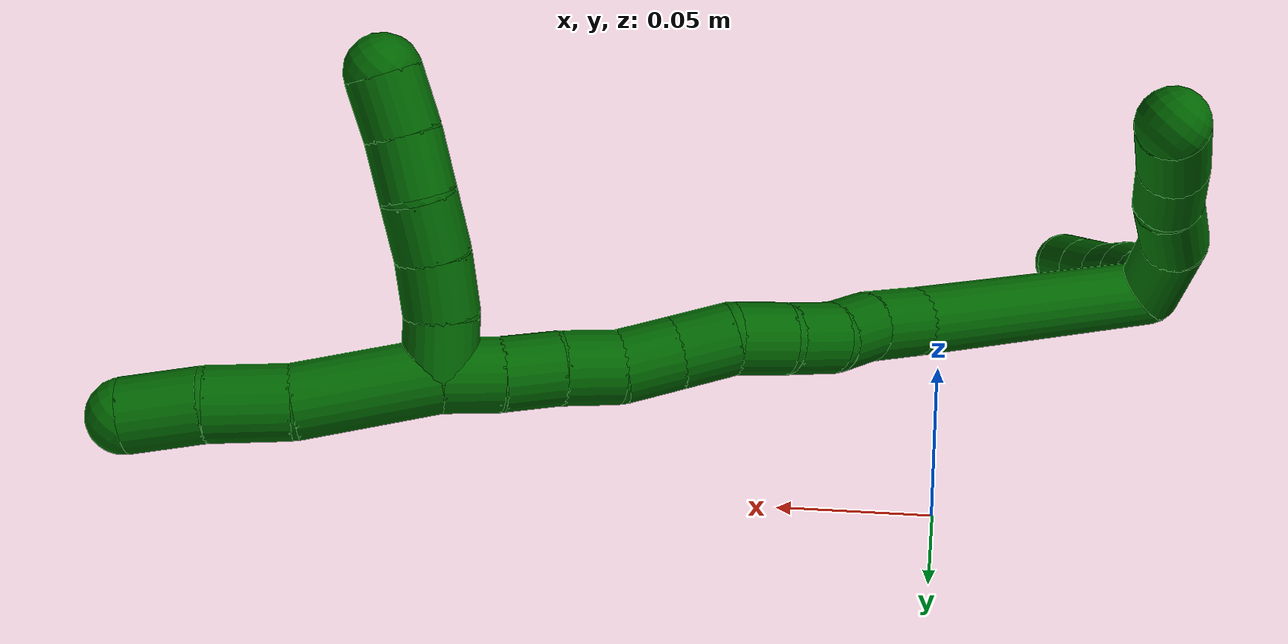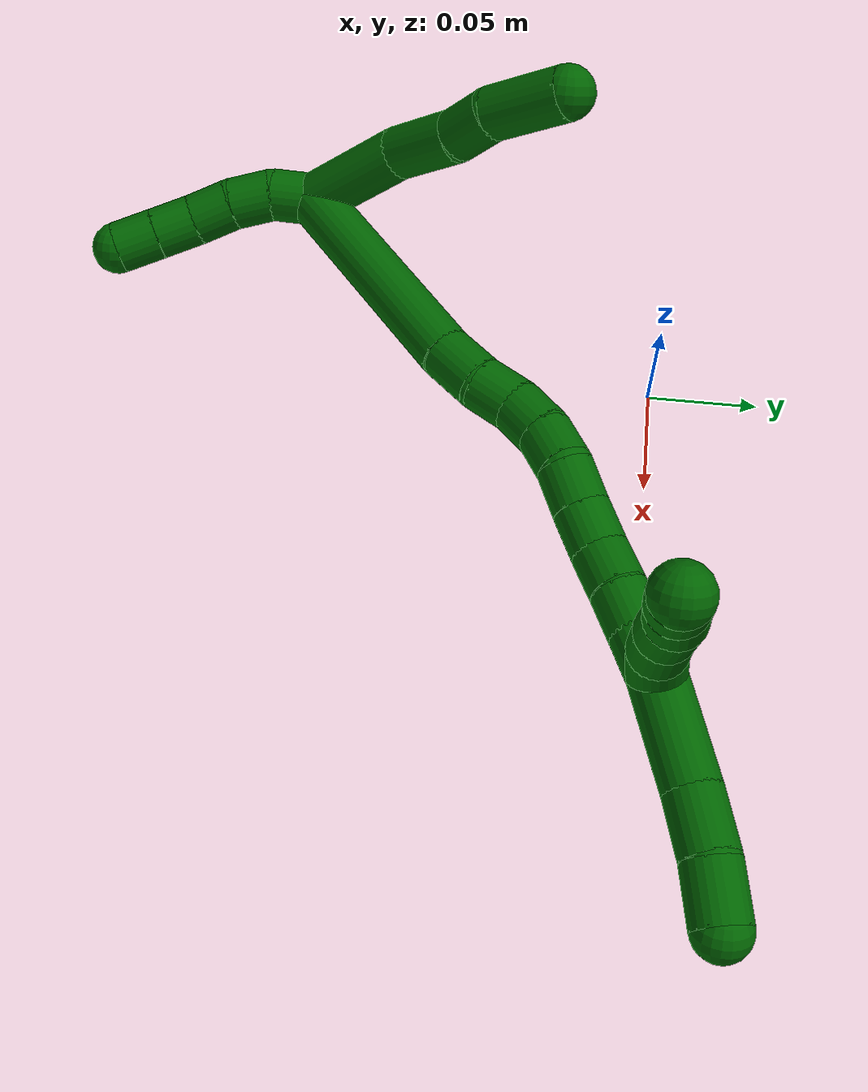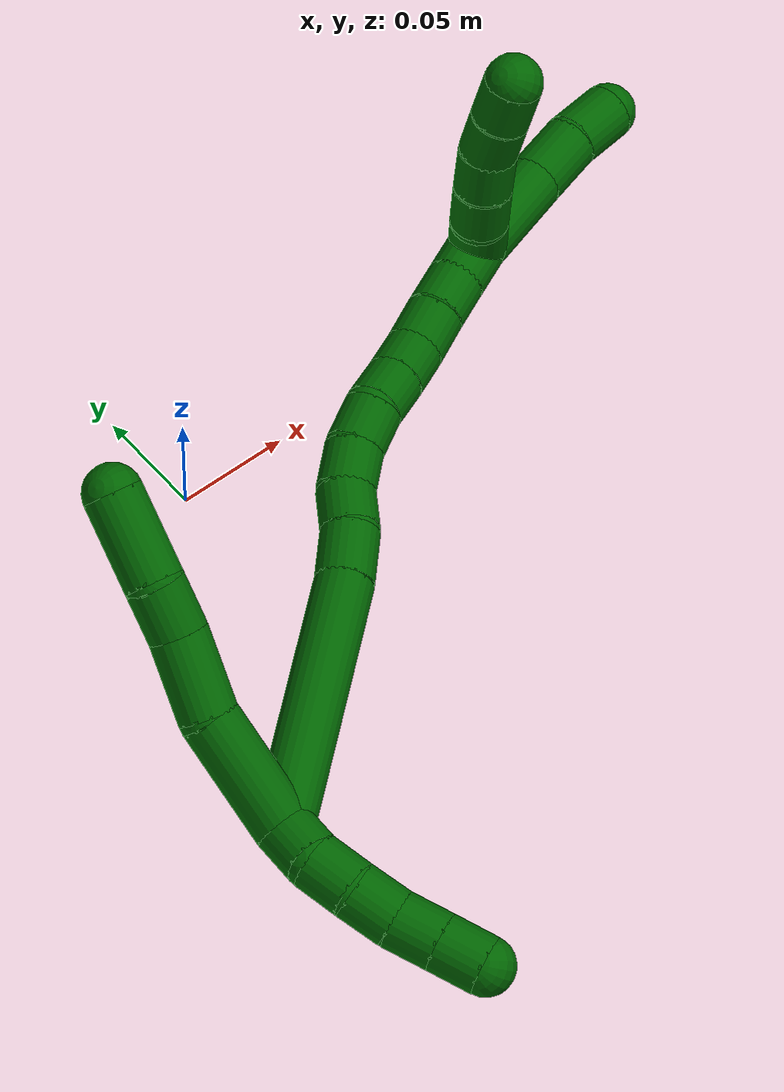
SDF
<sdf version="1.7">
 <world name="default">
  <model name="6">
   <static>0</static>
   <link name="6">
    <collision name="collision-cylinder-e_1_2_8">
     <pose>-0.007 0.021422 0.014103 -0.988556 -0.26646 0.144199</pose>
     <geometry><cylinder><radius>0.0125</radius><length>0.053171</length></cylinder></geometry>
     <surface>
      <friction><ode><mu>1.16</mu><mu2>1.16</mu2><slip1>0</slip1><slip2>0</slip2></ode></friction>
      <contact><ode><kp>1e+06</kp><kd>1</kd><max_vel>0</max_vel><min_depth>0.001</min_depth></ode></contact>
     </surface>
    </collision>
    <visual name="visual-cylinder-e_1_2_8">
     <pose>-0.007 0.021422 0.014103 -0.988556 -0.26646 0.144199</pose>
     <geometry><cylinder><radius>0.0125</radius><length>0.053171</length></cylinder></geometry>
     <material><ambient>0 0.392157 0.003922 1</ambient></material>
    </visual>
    <collision name="collision-cylinder-e_2_8_9">
     <pose>-0.015894 0.059132 0.0345 -1.20211 -0.10797 0.074072</pose>
     <geometry><cylinder><radius>0.0125</radius><length>0.035129</length></cylinder></geometry>
     <surface>
      <friction><ode><mu>1.16</mu><mu2>1.16</mu2><slip1>0</slip1><slip2>0</slip2></ode></friction>
      <contact><ode><kp>1e+06</kp><kd>1</kd><max_vel>0</max_vel><min_depth>0.001</min_depth></ode></contact>
     </surface>
    </collision>
    <visual name="visual-cylinder-e_2_8_9">
     <pose>-0.015894 0.059132 0.0345 -1.20211 -0.10797 0.074072</pose>
     <geometry><cylinder><radius>0.0125</radius><length>0.035129</length></cylinder></geometry>
     <material><ambient>0 0.392157 0.003922 1</ambient></material>
    </visual>
    <collision name="collision-cylinder-e_3_9_10">
     <pose>-0.018704 0.084987 0.047024 -0.993518 -0.080193 0.043489</pose>
     <geometry><cylinder><radius>0.0125</radius><length>0.022907</length></cylinder></geometry>
     <surface>
      <friction><ode><mu>1.16</mu><mu2>1.16</mu2><slip1>0</slip1><slip2>0</slip2></ode></friction>
      <contact><ode><kp>1e+06</kp><kd>1</kd><max_vel>0</max_vel><min_depth>0.001</min_depth></ode></contact>
     </surface>
    </collision>
    <visual name="visual-cylinder-e_3_9_10">
     <pose>-0.018704 0.084987 0.047024 -0.993518 -0.080193 0.043489</pose>
     <geometry><cylinder><radius>0.0125</radius><length>0.022907</length></cylinder></geometry>
     <material><ambient>0 0.392157 0.003922 1</ambient></material>
    </visual>
    <collision name="collision-cylinder-e_4_10_6">
     <pose>-0.023708 0.112291 0.059957 -1.2095 -0.212281 0.147003</pose>
     <geometry><cylinder><radius>0.0125</radius><length>0.038793</length></cylinder></geometry>
     <surface>
      <friction><ode><mu>1.16</mu><mu2>1.16</mu2><slip1>0</slip1><slip2>0</slip2></ode></friction>
      <contact><ode><kp>1e+06</kp><kd>1</kd><max_vel>0</max_vel><min_depth>0.001</min_depth></ode></contact>
     </surface>
    </collision>
    <visual name="visual-cylinder-e_4_10_6">
     <pose>-0.023708 0.112291 0.059957 -1.2095 -0.212281 0.147003</pose>
     <geometry><cylinder><radius>0.0125</radius><length>0.038793</length></cylinder></geometry>
     <material><ambient>0 0.392157 0.003922 1</ambient></material>
    </visual>
    <collision name="collision-cylinder-e_1_2_11">
     <pose>0.006385 -0.00769 0.000292 1.53283 0.692586 0.668688</pose>
     <geometry><cylinder><radius>0.0125</radius><length>0.02</length></cylinder></geometry>
     <surface>
      <friction><ode><mu>1.16</mu><mu2>1.16</mu2><slip1>0</slip1><slip2>0</slip2></ode></friction>
      <contact><ode><kp>1e+06</kp><kd>1</kd><max_vel>0</max_vel><min_depth>0.001</min_depth></ode></contact>
     </surface>
    </collision>
    <visual name="visual-cylinder-e_1_2_11">
     <pose>0.006385 -0.00769 0.000292 1.53283 0.692586 0.668688</pose>
     <geometry><cylinder><radius>0.0125</radius><length>0.02</length></cylinder></geometry>
     <material><ambient>0 0.392157 0.003922 1</ambient></material>
    </visual>
    <collision name="collision-cylinder-e_2_11_12">
     <pose>0.019694 -0.021995 -0.002301 1.98214 0.764711 1.10155</pose>
     <geometry><cylinder><radius>0.0125</radius><length>0.02</length></cylinder></geometry>
     <surface>
      <friction><ode><mu>1.16</mu><mu2>1.16</mu2><slip1>0</slip1><slip2>0</slip2></ode></friction>
      <contact><ode><kp>1e+06</kp><kd>1</kd><max_vel>0</max_vel><min_depth>0.001</min_depth></ode></contact>
     </surface>
    </collision>
    <visual name="visual-cylinder-e_2_11_12">
     <pose>0.019694 -0.021995 -0.002301 1.98214 0.764711 1.10155</pose>
     <geometry><cylinder><radius>0.0125</radius><length>0.02</length></cylinder></geometry>
     <material><ambient>0 0.392157 0.003922 1</ambient></material>
    </visual>
    <collision name="collision-cylinder-e_3_12_13">
     <pose>0.033005 -0.034879 -0.009645 2.18893 0.692886 1.22101</pose>
     <geometry><cylinder><radius>0.0125</radius><length>0.02</length></cylinder></geometry>
     <surface>
      <friction><ode><mu>1.16</mu><mu2>1.16</mu2><slip1>0</slip1><slip2>0</slip2></ode></friction>
      <contact><ode><kp>1e+06</kp><kd>1</kd><max_vel>0</max_vel><min_depth>0.001</min_depth></ode></contact>
     </surface>
    </collision>
    <visual name="visual-cylinder-e_3_12_13">
     <pose>0.033005 -0.034879 -0.009645 2.18893 0.692886 1.22101</pose>
     <geometry><cylinder><radius>0.0125</radius><length>0.02</length></cylinder></geometry>
     <material><ambient>0 0.392157 0.003922 1</ambient></material>
    </visual>
    <collision name="collision-cylinder-e_4_13_14">
     <pose>0.046958 -0.046487 -0.01788 2.18656 0.858092 1.44788</pose>
     <geometry><cylinder><radius>0.0125</radius><length>0.02</length></cylinder></geometry>
     <surface>
      <friction><ode><mu>1.16</mu><mu2>1.16</mu2><slip1>0</slip1><slip2>0</slip2></ode></friction>
      <contact><ode><kp>1e+06</kp><kd>1</kd><max_vel>0</max_vel><min_depth>0.001</min_depth></ode></contact>
     </surface>
    </collision>
    <visual name="visual-cylinder-e_4_13_14">
     <pose>0.046958 -0.046487 -0.01788 2.18656 0.858092 1.44788</pose>
     <geometry><cylinder><radius>0.0125</radius><length>0.02</length></cylinder></geometry>
     <material><ambient>0 0.392157 0.003922 1</ambient></material>
    </visual>
    <collision name="collision-cylinder-e_5_14_5">
     <pose>0.062053 -0.057228 -0.025417 2.17878 0.852393 1.43097</pose>
     <geometry><cylinder><radius>0.0125</radius><length>0.02</length></cylinder></geometry>
     <surface>
      <friction><ode><mu>1.16</mu><mu2>1.16</mu2><slip1>0</slip1><slip2>0</slip2></ode></friction>
      <contact><ode><kp>1e+06</kp><kd>1</kd><max_vel>0</max_vel><min_depth>0.001</min_depth></ode></contact>
     </surface>
    </collision>
    <visual name="visual-cylinder-e_5_14_5">
     <pose>0.062053 -0.057228 -0.025417 2.17878 0.852393 1.43097</pose>
     <geometry><cylinder><radius>0.0125</radius><length>0.02</length></cylinder></geometry>
     <material><ambient>0 0.392157 0.003922 1</ambient></material>
    </visual>
    <collision name="collision-cylinder-e_1_2_15">
     <pose>0.004188 0.052101 -0.025089 -2.01958 0.072296 -0.11498</pose>
     <geometry><cylinder><radius>0.0125</radius><length>0.115957</length></cylinder></geometry>
     <surface>
      <friction><ode><mu>1.16</mu><mu2>1.16</mu2><slip1>0</slip1><slip2>0</slip2></ode></friction>
      <contact><ode><kp>1e+06</kp><kd>1</kd><max_vel>0</max_vel><min_depth>0.001</min_depth></ode></contact>
     </surface>
    </collision>
    <visual name="visual-cylinder-e_1_2_15">
     <pose>0.004188 0.052101 -0.025089 -2.01958 0.072296 -0.11498</pose>
     <geometry><cylinder><radius>0.0125</radius><length>0.115957</length></cylinder></geometry>
     <material><ambient>0 0.392157 0.003922 1</ambient></material>
    </visual>
    <collision name="collision-cylinder-e_2_15_16">
     <pose>0.008424 0.115477 -0.054318 -1.9226 0.003982 -0.005704</pose>
     <geometry><cylinder><radius>0.0125</radius><length>0.024022</length></cylinder></geometry>
     <surface>
      <friction><ode><mu>1.16</mu><mu2>1.16</mu2><slip1>0</slip1><slip2>0</slip2></ode></friction>
      <contact><ode><kp>1e+06</kp><kd>1</kd><max_vel>0</max_vel><min_depth>0.001</min_depth></ode></contact>
     </surface>
    </collision>
    <visual name="visual-cylinder-e_2_15_16">
     <pose>0.008424 0.115477 -0.054318 -1.9226 0.003982 -0.005704</pose>
     <geometry><cylinder><radius>0.0125</radius><length>0.024022</length></cylinder></geometry>
     <material><ambient>0 0.392157 0.003922 1</ambient></material>
    </visual>
    <collision name="collision-cylinder-e_3_16_17">
     <pose>0.006439 0.136039 -0.061572 -1.89444 -0.204597 0.283512</pose>
     <geometry><cylinder><radius>0.0125</radius><length>0.020009</length></cylinder></geometry>
     <surface>
      <friction><ode><mu>1.16</mu><mu2>1.16</mu2><slip1>0</slip1><slip2>0</slip2></ode></friction>
      <contact><ode><kp>1e+06</kp><kd>1</kd><max_vel>0</max_vel><min_depth>0.001</min_depth></ode></contact>
     </surface>
    </collision>
    <visual name="visual-cylinder-e_3_16_17">
     <pose>0.006439 0.136039 -0.061572 -1.89444 -0.204597 0.283512</pose>
     <geometry><cylinder><radius>0.0125</radius><length>0.020009</length></cylinder></geometry>
     <material><ambient>0 0.392157 0.003922 1</ambient></material>
    </visual>
    <collision name="collision-cylinder-e_4_17_18">
     <pose>0.005362 0.154688 -0.068083 -1.91876 0.095707 -0.136416</pose>
     <geometry><cylinder><radius>0.0125</radius><length>0.020008</length></cylinder></geometry>
     <surface>
      <friction><ode><mu>1.16</mu><mu2>1.16</mu2><slip1>0</slip1><slip2>0</slip2></ode></friction>
      <contact><ode><kp>1e+06</kp><kd>1</kd><max_vel>0</max_vel><min_depth>0.001</min_depth></ode></contact>
     </surface>
    </collision>
    <visual name="visual-cylinder-e_4_17_18">
     <pose>0.005362 0.154688 -0.068083 -1.91876 0.095707 -0.136416</pose>
     <geometry><cylinder><radius>0.0125</radius><length>0.020008</length></cylinder></geometry>
     <material><ambient>0 0.392157 0.003922 1</ambient></material>
    </visual>
    <collision name="collision-cylinder-e_5_18_19">
     <pose>0.00893 0.172583 -0.075992 -2.05732 0.264175 -0.4342</pose>
     <geometry><cylinder><radius>0.0125</radius><length>0.02</length></cylinder></geometry>
     <surface>
      <friction><ode><mu>1.16</mu><mu2>1.16</mu2><slip1>0</slip1><slip2>0</slip2></ode></friction>
      <contact><ode><kp>1e+06</kp><kd>1</kd><max_vel>0</max_vel><min_depth>0.001</min_depth></ode></contact>
     </surface>
    </collision>
    <visual name="visual-cylinder-e_5_18_19">
     <pose>0.00893 0.172583 -0.075992 -2.05732 0.264175 -0.4342</pose>
     <geometry><cylinder><radius>0.0125</radius><length>0.02</length></cylinder></geometry>
     <material><ambient>0 0.392157 0.003922 1</ambient></material>
    </visual>
    <collision name="collision-cylinder-e_6_19_20">
     <pose>0.013375 0.188163 -0.08736 -2.34239 0.184434 -0.431146</pose>
     <geometry><cylinder><radius>0.0125</radius><length>0.020002</length></cylinder></geometry>
     <surface>
      <friction><ode><mu>1.16</mu><mu2>1.16</mu2><slip1>0</slip1><slip2>0</slip2></ode></friction>
      <contact><ode><kp>1e+06</kp><kd>1</kd><max_vel>0</max_vel><min_depth>0.001</min_depth></ode></contact>
     </surface>
    </collision>
    <visual name="visual-cylinder-e_6_19_20">
     <pose>0.013375 0.188163 -0.08736 -2.34239 0.184434 -0.431146</pose>
     <geometry><cylinder><radius>0.0125</radius><length>0.020002</length></cylinder></geometry>
     <material><ambient>0 0.392157 0.003922 1</ambient></material>
    </visual>
    <collision name="collision-cylinder-e_7_20_21">
     <pose>0.016855 0.202481 -0.100881 -2.31276 0.165387 -0.372463</pose>
     <geometry><cylinder><radius>0.0125</radius><length>0.020001</length></cylinder></geometry>
     <surface>
      <friction><ode><mu>1.16</mu><mu2>1.16</mu2><slip1>0</slip1><slip2>0</slip2></ode></friction>
      <contact><ode><kp>1e+06</kp><kd>1</kd><max_vel>0</max_vel><min_depth>0.001</min_depth></ode></contact>
     </surface>
    </collision>
    <visual name="visual-cylinder-e_7_20_21">
     <pose>0.016855 0.202481 -0.100881 -2.31276 0.165387 -0.372463</pose>
     <geometry><cylinder><radius>0.0125</radius><length>0.020001</length></cylinder></geometry>
     <material><ambient>0 0.392157 0.003922 1</ambient></material>
    </visual>
    <collision name="collision-cylinder-e_8_21_22">
     <pose>0.02148 0.217885 -0.112546 -2.12199 0.302425 -0.53215</pose>
     <geometry><cylinder><radius>0.0125</radius><length>0.02</length></cylinder></geometry>
     <surface>
      <friction><ode><mu>1.16</mu><mu2>1.16</mu2><slip1>0</slip1><slip2>0</slip2></ode></friction>
      <contact><ode><kp>1e+06</kp><kd>1</kd><max_vel>0</max_vel><min_depth>0.001</min_depth></ode></contact>
     </surface>
    </collision>
    <visual name="visual-cylinder-e_8_21_22">
     <pose>0.02148 0.217885 -0.112546 -2.12199 0.302425 -0.53215</pose>
     <geometry><cylinder><radius>0.0125</radius><length>0.02</length></cylinder></geometry>
     <material><ambient>0 0.392157 0.003922 1</ambient></material>
    </visual>
    <collision name="collision-cylinder-e_9_22_23">
     <pose>0.027003 0.233812 -0.12327 -2.20428 0.257307 -0.500352</pose>
     <geometry><cylinder><radius>0.0125</radius><length>0.02</length></cylinder></geometry>
     <surface>
      <friction><ode><mu>1.16</mu><mu2>1.16</mu2><slip1>0</slip1><slip2>0</slip2></ode></friction>
      <contact><ode><kp>1e+06</kp><kd>1</kd><max_vel>0</max_vel><min_depth>0.001</min_depth></ode></contact>
     </surface>
    </collision>
    <visual name="visual-cylinder-e_9_22_23">
     <pose>0.027003 0.233812 -0.12327 -2.20428 0.257307 -0.500352</pose>
     <geometry><cylinder><radius>0.0125</radius><length>0.02</length></cylinder></geometry>
     <material><ambient>0 0.392157 0.003922 1</ambient></material>
    </visual>
    <collision name="collision-cylinder-e_10_23_1">
     <pose>0.03282 0.249556 -0.134104 -2.14196 0.333352 -0.597725</pose>
     <geometry><cylinder><radius>0.0125</radius><length>0.02</length></cylinder></geometry>
     <surface>
      <friction><ode><mu>1.16</mu><mu2>1.16</mu2><slip1>0</slip1><slip2>0</slip2></ode></friction>
      <contact><ode><kp>1e+06</kp><kd>1</kd><max_vel>0</max_vel><min_depth>0.001</min_depth></ode></contact>
     </surface>
    </collision>
    <visual name="visual-cylinder-e_10_23_1">
     <pose>0.03282 0.249556 -0.134104 -2.14196 0.333352 -0.597725</pose>
     <geometry><cylinder><radius>0.0125</radius><length>0.02</length></cylinder></geometry>
     <material><ambient>0 0.392157 0.003922 1</ambient></material>
    </visual>
    <collision name="collision-cylinder-e_1_1_24">
     <pose>0.042571 0.273526 -0.155261 -2.35706 0.278303 -0.652865</pose>
     <geometry><cylinder><radius>0.0125</radius><length>0.047167</length></cylinder></geometry>
     <surface>
      <friction><ode><mu>1.16</mu><mu2>1.16</mu2><slip1>0</slip1><slip2>0</slip2></ode></friction>
      <contact><ode><kp>1e+06</kp><kd>1</kd><max_vel>0</max_vel><min_depth>0.001</min_depth></ode></contact>
     </surface>
    </collision>
    <visual name="visual-cylinder-e_1_1_24">
     <pose>0.042571 0.273526 -0.155261 -2.35706 0.278303 -0.652865</pose>
     <geometry><cylinder><radius>0.0125</radius><length>0.047167</length></cylinder></geometry>
     <material><ambient>0 0.392157 0.003922 1</ambient></material>
    </visual>
    <collision name="collision-cylinder-e_2_24_25">
     <pose>0.054587 0.299089 -0.179362 -2.27175 0.417381 -0.855378</pose>
     <geometry><cylinder><radius>0.0125</radius><length>0.027316</length></cylinder></geometry>
     <surface>
      <friction><ode><mu>1.16</mu><mu2>1.16</mu2><slip1>0</slip1><slip2>0</slip2></ode></friction>
      <contact><ode><kp>1e+06</kp><kd>1</kd><max_vel>0</max_vel><min_depth>0.001</min_depth></ode></contact>
     </surface>
    </collision>
    <visual name="visual-cylinder-e_2_24_25">
     <pose>0.054587 0.299089 -0.179362 -2.27175 0.417381 -0.855378</pose>
     <geometry><cylinder><radius>0.0125</radius><length>0.027316</length></cylinder></geometry>
     <material><ambient>0 0.392157 0.003922 1</ambient></material>
    </visual>
    <collision name="collision-cylinder-e_3_25_4">
     <pose>0.065107 0.316142 -0.196442 -2.4476 0.401306 -1.02467</pose>
     <geometry><cylinder><radius>0.0125</radius><length>0.025517</length></cylinder></geometry>
     <surface>
      <friction><ode><mu>1.16</mu><mu2>1.16</mu2><slip1>0</slip1><slip2>0</slip2></ode></friction>
      <contact><ode><kp>1e+06</kp><kd>1</kd><max_vel>0</max_vel><min_depth>0.001</min_depth></ode></contact>
     </surface>
    </collision>
    <visual name="visual-cylinder-e_3_25_4">
     <pose>0.065107 0.316142 -0.196442 -2.4476 0.401306 -1.02467</pose>
     <geometry><cylinder><radius>0.0125</radius><length>0.025517</length></cylinder></geometry>
     <material><ambient>0 0.392157 0.003922 1</ambient></material>
    </visual>
    <collision name="collision-cylinder-e_1_1_26">
     <pose>0.041143 0.260512 -0.131121 -0.355751 0.529407 -0.097384</pose>
     <geometry><cylinder><radius>0.0125</radius><length>0.02</length></cylinder></geometry>
     <surface>
      <friction><ode><mu>1.16</mu><mu2>1.16</mu2><slip1>0</slip1><slip2>0</slip2></ode></friction>
      <contact><ode><kp>1e+06</kp><kd>1</kd><max_vel>0</max_vel><min_depth>0.001</min_depth></ode></contact>
     </surface>
    </collision>
    <visual name="visual-cylinder-e_1_1_26">
     <pose>0.041143 0.260512 -0.131121 -0.355751 0.529407 -0.097384</pose>
     <geometry><cylinder><radius>0.0125</radius><length>0.02</length></cylinder></geometry>
     <material><ambient>0 0.392157 0.003922 1</ambient></material>
    </visual>
    <collision name="collision-cylinder-e_2_26_27">
     <pose>0.051357 0.268242 -0.115889 -0.584431 0.542702 -0.166999</pose>
     <geometry><cylinder><radius>0.0125</radius><length>0.02</length></cylinder></geometry>
     <surface>
      <friction><ode><mu>1.16</mu><mu2>1.16</mu2><slip1>0</slip1><slip2>0</slip2></ode></friction>
      <contact><ode><kp>1e+06</kp><kd>1</kd><max_vel>0</max_vel><min_depth>0.001</min_depth></ode></contact>
     </surface>
    </collision>
    <visual name="visual-cylinder-e_2_26_27">
     <pose>0.051357 0.268242 -0.115889 -0.584431 0.542702 -0.166999</pose>
     <geometry><cylinder><radius>0.0125</radius><length>0.02</length></cylinder></geometry>
     <material><ambient>0 0.392157 0.003922 1</ambient></material>
    </visual>
    <collision name="collision-cylinder-e_3_27_28">
     <pose>0.061753 0.278435 -0.10221 -0.696563 0.550477 -0.204359</pose>
     <geometry><cylinder><radius>0.0125</radius><length>0.02</length></cylinder></geometry>
     <surface>
      <friction><ode><mu>1.16</mu><mu2>1.16</mu2><slip1>0</slip1><slip2>0</slip2></ode></friction>
      <contact><ode><kp>1e+06</kp><kd>1</kd><max_vel>0</max_vel><min_depth>0.001</min_depth></ode></contact>
     </surface>
    </collision>
    <visual name="visual-cylinder-e_3_27_28">
     <pose>0.061753 0.278435 -0.10221 -0.696563 0.550477 -0.204359</pose>
     <geometry><cylinder><radius>0.0125</radius><length>0.02</length></cylinder></geometry>
     <material><ambient>0 0.392157 0.003922 1</ambient></material>
    </visual>
    <collision name="collision-cylinder-e_4_28_29">
     <pose>0.073527 0.288344 -0.089552 -0.627688 0.713358 -0.240712</pose>
     <geometry><cylinder><radius>0.0125</radius><length>0.02</length></cylinder></geometry>
     <surface>
      <friction><ode><mu>1.16</mu><mu2>1.16</mu2><slip1>0</slip1><slip2>0</slip2></ode></friction>
      <contact><ode><kp>1e+06</kp><kd>1</kd><max_vel>0</max_vel><min_depth>0.001</min_depth></ode></contact>
     </surface>
    </collision>
    <visual name="visual-cylinder-e_4_28_29">
     <pose>0.073527 0.288344 -0.089552 -0.627688 0.713358 -0.240712</pose>
     <geometry><cylinder><radius>0.0125</radius><length>0.02</length></cylinder></geometry>
     <material><ambient>0 0.392157 0.003922 1</ambient></material>
    </visual>
    <collision name="collision-cylinder-e_5_29_3">
     <pose>0.086688 0.297758 -0.07782 -0.725153 0.723044 -0.28495</pose>
     <geometry><cylinder><radius>0.0125</radius><length>0.02</length></cylinder></geometry>
     <surface>
      <friction><ode><mu>1.16</mu><mu2>1.16</mu2><slip1>0</slip1><slip2>0</slip2></ode></friction>
      <contact><ode><kp>1e+06</kp><kd>1</kd><max_vel>0</max_vel><min_depth>0.001</min_depth></ode></contact>
     </surface>
    </collision>
    <visual name="visual-cylinder-e_5_29_3">
     <pose>0.086688 0.297758 -0.07782 -0.725153 0.723044 -0.28495</pose>
     <geometry><cylinder><radius>0.0125</radius><length>0.02</length></cylinder></geometry>
     <material><ambient>0 0.392157 0.003922 1</ambient></material>
    </visual>
    <collision name="collision-sphere-3">
     <pose>0.093305 0.302731 -0.072209 0 -0 0</pose>
     <geometry><sphere><radius>0.0125</radius></sphere></geometry>
     <surface>
      <friction><ode><mu>1.16</mu><mu2>1.16</mu2><slip1>0</slip1><slip2>0</slip2></ode></friction>
      <contact><ode><kp>1e+06</kp><kd>1</kd><max_vel>0</max_vel><min_depth>0.001</min_depth></ode></contact>
     </surface>
    </collision>
    <visual name="visual-sphere-3">
     <pose>0.093305 0.302731 -0.072209 0 -0 0</pose>
     <geometry><sphere><radius>0.0125</radius></sphere></geometry>
     <material><ambient>0 0.392157 0.003922 1</ambient></material>
    </visual>
    <collision name="collision-sphere-29">
     <pose>0.080071 0.292785 -0.083432 0 -0 0</pose>
     <geometry><sphere><radius>0.0125</radius></sphere></geometry>
     <surface>
      <friction><ode><mu>1.16</mu><mu2>1.16</mu2><slip1>0</slip1><slip2>0</slip2></ode></friction>
      <contact><ode><kp>1e+06</kp><kd>1</kd><max_vel>0</max_vel><min_depth>0.001</min_depth></ode></contact>
     </surface>
    </collision>
    <visual name="visual-sphere-29">
     <pose>0.080071 0.292785 -0.083432 0 -0 0</pose>
     <geometry><sphere><radius>0.0125</radius></sphere></geometry>
     <material><ambient>0 0.392157 0.003922 1</ambient></material>
    </visual>
    <collision name="collision-sphere-28">
     <pose>0.066984 0.283903 -0.095672 0 -0 0</pose>
     <geometry><sphere><radius>0.0125</radius></sphere></geometry>
     <surface>
      <friction><ode><mu>1.16</mu><mu2>1.16</mu2><slip1>0</slip1><slip2>0</slip2></ode></friction>
      <contact><ode><kp>1e+06</kp><kd>1</kd><max_vel>0</max_vel><min_depth>0.001</min_depth></ode></contact>
     </surface>
    </collision>
    <visual name="visual-sphere-28">
     <pose>0.066984 0.283903 -0.095672 0 -0 0</pose>
     <geometry><sphere><radius>0.0125</radius></sphere></geometry>
     <material><ambient>0 0.392157 0.003922 1</ambient></material>
    </visual>
    <collision name="collision-sphere-27">
     <pose>0.056522 0.272967 -0.108747 0 -0 0</pose>
     <geometry><sphere><radius>0.0125</radius></sphere></geometry>
     <surface>
      <friction><ode><mu>1.16</mu><mu2>1.16</mu2><slip1>0</slip1><slip2>0</slip2></ode></friction>
      <contact><ode><kp>1e+06</kp><kd>1</kd><max_vel>0</max_vel><min_depth>0.001</min_depth></ode></contact>
     </surface>
    </collision>
    <visual name="visual-sphere-27">
     <pose>0.056522 0.272967 -0.108747 0 -0 0</pose>
     <geometry><sphere><radius>0.0125</radius></sphere></geometry>
     <material><ambient>0 0.392157 0.003922 1</ambient></material>
    </visual>
    <collision name="collision-sphere-26">
     <pose>0.046193 0.263518 -0.123031 0 -0 0</pose>
     <geometry><sphere><radius>0.0125</radius></sphere></geometry>
     <surface>
      <friction><ode><mu>1.16</mu><mu2>1.16</mu2><slip1>0</slip1><slip2>0</slip2></ode></friction>
      <contact><ode><kp>1e+06</kp><kd>1</kd><max_vel>0</max_vel><min_depth>0.001</min_depth></ode></contact>
     </surface>
    </collision>
    <visual name="visual-sphere-26">
     <pose>0.046193 0.263518 -0.123031 0 -0 0</pose>
     <geometry><sphere><radius>0.0125</radius></sphere></geometry>
     <material><ambient>0 0.392157 0.003922 1</ambient></material>
    </visual>
    <collision name="collision-sphere-4">
     <pose>0.070091 0.323654 -0.20547 0 -0 0</pose>
     <geometry><sphere><radius>0.0125</radius></sphere></geometry>
     <surface>
      <friction><ode><mu>1.16</mu><mu2>1.16</mu2><slip1>0</slip1><slip2>0</slip2></ode></friction>
      <contact><ode><kp>1e+06</kp><kd>1</kd><max_vel>0</max_vel><min_depth>0.001</min_depth></ode></contact>
     </surface>
    </collision>
    <visual name="visual-sphere-4">
     <pose>0.070091 0.323654 -0.20547 0 -0 0</pose>
     <geometry><sphere><radius>0.0125</radius></sphere></geometry>
     <material><ambient>0 0.392157 0.003922 1</ambient></material>
    </visual>
    <collision name="collision-sphere-25">
     <pose>0.060123 0.30863 -0.187414 0 -0 0</pose>
     <geometry><sphere><radius>0.0125</radius></sphere></geometry>
     <surface>
      <friction><ode><mu>1.16</mu><mu2>1.16</mu2><slip1>0</slip1><slip2>0</slip2></ode></friction>
      <contact><ode><kp>1e+06</kp><kd>1</kd><max_vel>0</max_vel><min_depth>0.001</min_depth></ode></contact>
     </surface>
    </collision>
    <visual name="visual-sphere-25">
     <pose>0.060123 0.30863 -0.187414 0 -0 0</pose>
     <geometry><sphere><radius>0.0125</radius></sphere></geometry>
     <material><ambient>0 0.392157 0.003922 1</ambient></material>
    </visual>
    <collision name="collision-sphere-24">
     <pose>0.04905 0.289547 -0.171309 0 -0 0</pose>
     <geometry><sphere><radius>0.0125</radius></sphere></geometry>
     <surface>
      <friction><ode><mu>1.16</mu><mu2>1.16</mu2><slip1>0</slip1><slip2>0</slip2></ode></friction>
      <contact><ode><kp>1e+06</kp><kd>1</kd><max_vel>0</max_vel><min_depth>0.001</min_depth></ode></contact>
     </surface>
    </collision>
    <visual name="visual-sphere-24">
     <pose>0.04905 0.289547 -0.171309 0 -0 0</pose>
     <geometry><sphere><radius>0.0125</radius></sphere></geometry>
     <material><ambient>0 0.392157 0.003922 1</ambient></material>
    </visual>
    <collision name="collision-sphere-1">
     <pose>0.036092 0.257506 -0.139212 0 -0 0</pose>
     <geometry><sphere><radius>0.0125</radius></sphere></geometry>
     <surface>
      <friction><ode><mu>1.16</mu><mu2>1.16</mu2><slip1>0</slip1><slip2>0</slip2></ode></friction>
      <contact><ode><kp>1e+06</kp><kd>1</kd><max_vel>0</max_vel><min_depth>0.001</min_depth></ode></contact>
     </surface>
    </collision>
    <visual name="visual-sphere-1">
     <pose>0.036092 0.257506 -0.139212 0 -0 0</pose>
     <geometry><sphere><radius>0.0125</radius></sphere></geometry>
     <material><ambient>0 0.392157 0.003922 1</ambient></material>
    </visual>
    <collision name="collision-sphere-23">
     <pose>0.029548 0.241606 -0.128995 0 -0 0</pose>
     <geometry><sphere><radius>0.0125</radius></sphere></geometry>
     <surface>
      <friction><ode><mu>1.16</mu><mu2>1.16</mu2><slip1>0</slip1><slip2>0</slip2></ode></friction>
      <contact><ode><kp>1e+06</kp><kd>1</kd><max_vel>0</max_vel><min_depth>0.001</min_depth></ode></contact>
     </surface>
    </collision>
    <visual name="visual-sphere-23">
     <pose>0.029548 0.241606 -0.128995 0 -0 0</pose>
     <geometry><sphere><radius>0.0125</radius></sphere></geometry>
     <material><ambient>0 0.392157 0.003922 1</ambient></material>
    </visual>
    <collision name="collision-sphere-22">
     <pose>0.024458 0.226017 -0.117545 0 -0 0</pose>
     <geometry><sphere><radius>0.0125</radius></sphere></geometry>
     <surface>
      <friction><ode><mu>1.16</mu><mu2>1.16</mu2><slip1>0</slip1><slip2>0</slip2></ode></friction>
      <contact><ode><kp>1e+06</kp><kd>1</kd><max_vel>0</max_vel><min_depth>0.001</min_depth></ode></contact>
     </surface>
    </collision>
    <visual name="visual-sphere-22">
     <pose>0.024458 0.226017 -0.117545 0 -0 0</pose>
     <geometry><sphere><radius>0.0125</radius></sphere></geometry>
     <material><ambient>0 0.392157 0.003922 1</ambient></material>
    </visual>
    <collision name="collision-sphere-21">
     <pose>0.018502 0.209753 -0.107547 0 -0 0</pose>
     <geometry><sphere><radius>0.0125</radius></sphere></geometry>
     <surface>
      <friction><ode><mu>1.16</mu><mu2>1.16</mu2><slip1>0</slip1><slip2>0</slip2></ode></friction>
      <contact><ode><kp>1e+06</kp><kd>1</kd><max_vel>0</max_vel><min_depth>0.001</min_depth></ode></contact>
     </surface>
    </collision>
    <visual name="visual-sphere-21">
     <pose>0.018502 0.209753 -0.107547 0 -0 0</pose>
     <geometry><sphere><radius>0.0125</radius></sphere></geometry>
     <material><ambient>0 0.392157 0.003922 1</ambient></material>
    </visual>
    <collision name="collision-sphere-11">
     <pose>0.012771 -0.015381 0.000584 0 -0 0</pose>
     <geometry><sphere><radius>0.0125</radius></sphere></geometry>
     <surface>
      <friction><ode><mu>1.16</mu><mu2>1.16</mu2><slip1>0</slip1><slip2>0</slip2></ode></friction>
      <contact><ode><kp>1e+06</kp><kd>1</kd><max_vel>0</max_vel><min_depth>0.001</min_depth></ode></contact>
     </surface>
    </collision>
    <visual name="visual-sphere-11">
     <pose>0.012771 -0.015381 0.000584 0 -0 0</pose>
     <geometry><sphere><radius>0.0125</radius></sphere></geometry>
     <material><ambient>0 0.392157 0.003922 1</ambient></material>
    </visual>
    <collision name="collision-sphere-6">
     <pose>-0.027795 0.130028 0.066659 0 -0 0</pose>
     <geometry><sphere><radius>0.0125</radius></sphere></geometry>
     <surface>
      <friction><ode><mu>1.16</mu><mu2>1.16</mu2><slip1>0</slip1><slip2>0</slip2></ode></friction>
      <contact><ode><kp>1e+06</kp><kd>1</kd><max_vel>0</max_vel><min_depth>0.001</min_depth></ode></contact>
     </surface>
    </collision>
    <visual name="visual-sphere-6">
     <pose>-0.027795 0.130028 0.066659 0 -0 0</pose>
     <geometry><sphere><radius>0.0125</radius></sphere></geometry>
     <material><ambient>0 0.392157 0.003922 1</ambient></material>
    </visual>
    <collision name="collision-sphere-10">
     <pose>-0.019621 0.094554 0.053254 0 -0 0</pose>
     <geometry><sphere><radius>0.0125</radius></sphere></geometry>
     <surface>
      <friction><ode><mu>1.16</mu><mu2>1.16</mu2><slip1>0</slip1><slip2>0</slip2></ode></friction>
      <contact><ode><kp>1e+06</kp><kd>1</kd><max_vel>0</max_vel><min_depth>0.001</min_depth></ode></contact>
     </surface>
    </collision>
    <visual name="visual-sphere-10">
     <pose>-0.019621 0.094554 0.053254 0 -0 0</pose>
     <geometry><sphere><radius>0.0125</radius></sphere></geometry>
     <material><ambient>0 0.392157 0.003922 1</ambient></material>
    </visual>
    <collision name="collision-sphere-9">
     <pose>-0.017786 0.075421 0.040793 0 -0 0</pose>
     <geometry><sphere><radius>0.0125</radius></sphere></geometry>
     <surface>
      <friction><ode><mu>1.16</mu><mu2>1.16</mu2><slip1>0</slip1><slip2>0</slip2></ode></friction>
      <contact><ode><kp>1e+06</kp><kd>1</kd><max_vel>0</max_vel><min_depth>0.001</min_depth></ode></contact>
     </surface>
    </collision>
    <visual name="visual-sphere-9">
     <pose>-0.017786 0.075421 0.040793 0 -0 0</pose>
     <geometry><sphere><radius>0.0125</radius></sphere></geometry>
     <material><ambient>0 0.392157 0.003922 1</ambient></material>
    </visual>
    <collision name="collision-sphere-2">
     <geometry><sphere><radius>0.0125</radius></sphere></geometry>
     <surface>
      <friction><ode><mu>1.16</mu><mu2>1.16</mu2><slip1>0</slip1><slip2>0</slip2></ode></friction>
      <contact><ode><kp>1e+06</kp><kd>1</kd><max_vel>0</max_vel><min_depth>0.001</min_depth></ode></contact>
     </surface>
    </collision>
    <visual name="visual-sphere-2">
     <geometry><sphere><radius>0.0125</radius></sphere></geometry>
     <material><ambient>0 0.392157 0.003922 1</ambient></material>
    </visual>
    <collision name="collision-sphere-19">
     <pose>0.011541 0.181116 -0.080505 0 -0 0</pose>
     <geometry><sphere><radius>0.0125</radius></sphere></geometry>
     <surface>
      <friction><ode><mu>1.16</mu><mu2>1.16</mu2><slip1>0</slip1><slip2>0</slip2></ode></friction>
      <contact><ode><kp>1e+06</kp><kd>1</kd><max_vel>0</max_vel><min_depth>0.001</min_depth></ode></contact>
     </surface>
    </collision>
    <visual name="visual-sphere-19">
     <pose>0.011541 0.181116 -0.080505 0 -0 0</pose>
     <geometry><sphere><radius>0.0125</radius></sphere></geometry>
     <material><ambient>0 0.392157 0.003922 1</ambient></material>
    </visual>
    <collision name="collision-sphere-8">
     <pose>-0.014001 0.042843 0.028207 0 -0 0</pose>
     <geometry><sphere><radius>0.0125</radius></sphere></geometry>
     <surface>
      <friction><ode><mu>1.16</mu><mu2>1.16</mu2><slip1>0</slip1><slip2>0</slip2></ode></friction>
      <contact><ode><kp>1e+06</kp><kd>1</kd><max_vel>0</max_vel><min_depth>0.001</min_depth></ode></contact>
     </surface>
    </collision>
    <visual name="visual-sphere-8">
     <pose>-0.014001 0.042843 0.028207 0 -0 0</pose>
     <geometry><sphere><radius>0.0125</radius></sphere></geometry>
     <material><ambient>0 0.392157 0.003922 1</ambient></material>
    </visual>
    <collision name="collision-sphere-12">
     <pose>0.026617 -0.028609 -0.005186 0 -0 0</pose>
     <geometry><sphere><radius>0.0125</radius></sphere></geometry>
     <surface>
      <friction><ode><mu>1.16</mu><mu2>1.16</mu2><slip1>0</slip1><slip2>0</slip2></ode></friction>
      <contact><ode><kp>1e+06</kp><kd>1</kd><max_vel>0</max_vel><min_depth>0.001</min_depth></ode></contact>
     </surface>
    </collision>
    <visual name="visual-sphere-12">
     <pose>0.026617 -0.028609 -0.005186 0 -0 0</pose>
     <geometry><sphere><radius>0.0125</radius></sphere></geometry>
     <material><ambient>0 0.392157 0.003922 1</ambient></material>
    </visual>
    <collision name="collision-sphere-13">
     <pose>0.039392 -0.041149 -0.014104 0 -0 0</pose>
     <geometry><sphere><radius>0.0125</radius></sphere></geometry>
     <surface>
      <friction><ode><mu>1.16</mu><mu2>1.16</mu2><slip1>0</slip1><slip2>0</slip2></ode></friction>
      <contact><ode><kp>1e+06</kp><kd>1</kd><max_vel>0</max_vel><min_depth>0.001</min_depth></ode></contact>
     </surface>
    </collision>
    <visual name="visual-sphere-13">
     <pose>0.039392 -0.041149 -0.014104 0 -0 0</pose>
     <geometry><sphere><radius>0.0125</radius></sphere></geometry>
     <material><ambient>0 0.392157 0.003922 1</ambient></material>
    </visual>
    <collision name="collision-sphere-14">
     <pose>0.054524 -0.051825 -0.021657 0 -0 0</pose>
     <geometry><sphere><radius>0.0125</radius></sphere></geometry>
     <surface>
      <friction><ode><mu>1.16</mu><mu2>1.16</mu2><slip1>0</slip1><slip2>0</slip2></ode></friction>
      <contact><ode><kp>1e+06</kp><kd>1</kd><max_vel>0</max_vel><min_depth>0.001</min_depth></ode></contact>
     </surface>
    </collision>
    <visual name="visual-sphere-14">
     <pose>0.054524 -0.051825 -0.021657 0 -0 0</pose>
     <geometry><sphere><radius>0.0125</radius></sphere></geometry>
     <material><ambient>0 0.392157 0.003922 1</ambient></material>
    </visual>
    <collision name="collision-sphere-5">
     <pose>0.069581 -0.06263 -0.029176 0 -0 0</pose>
     <geometry><sphere><radius>0.0125</radius></sphere></geometry>
     <surface>
      <friction><ode><mu>1.16</mu><mu2>1.16</mu2><slip1>0</slip1><slip2>0</slip2></ode></friction>
      <contact><ode><kp>1e+06</kp><kd>1</kd><max_vel>0</max_vel><min_depth>0.001</min_depth></ode></contact>
     </surface>
    </collision>
    <visual name="visual-sphere-5">
     <pose>0.069581 -0.06263 -0.029176 0 -0 0</pose>
     <geometry><sphere><radius>0.0125</radius></sphere></geometry>
     <material><ambient>0 0.392157 0.003922 1</ambient></material>
    </visual>
    <collision name="collision-sphere-15">
     <pose>0.008376 0.104202 -0.050179 0 -0 0</pose>
     <geometry><sphere><radius>0.0125</radius></sphere></geometry>
     <surface>
      <friction><ode><mu>1.16</mu><mu2>1.16</mu2><slip1>0</slip1><slip2>0</slip2></ode></friction>
      <contact><ode><kp>1e+06</kp><kd>1</kd><max_vel>0</max_vel><min_depth>0.001</min_depth></ode></contact>
     </surface>
    </collision>
    <visual name="visual-sphere-15">
     <pose>0.008376 0.104202 -0.050179 0 -0 0</pose>
     <geometry><sphere><radius>0.0125</radius></sphere></geometry>
     <material><ambient>0 0.392157 0.003922 1</ambient></material>
    </visual>
    <collision name="collision-sphere-16">
     <pose>0.008472 0.126752 -0.058457 0 -0 0</pose>
     <geometry><sphere><radius>0.0125</radius></sphere></geometry>
     <surface>
      <friction><ode><mu>1.16</mu><mu2>1.16</mu2><slip1>0</slip1><slip2>0</slip2></ode></friction>
      <contact><ode><kp>1e+06</kp><kd>1</kd><max_vel>0</max_vel><min_depth>0.001</min_depth></ode></contact>
     </surface>
    </collision>
    <visual name="visual-sphere-16">
     <pose>0.008472 0.126752 -0.058457 0 -0 0</pose>
     <geometry><sphere><radius>0.0125</radius></sphere></geometry>
     <material><ambient>0 0.392157 0.003922 1</ambient></material>
    </visual>
    <collision name="collision-sphere-17">
     <pose>0.004406 0.145326 -0.064687 0 -0 0</pose>
     <geometry><sphere><radius>0.0125</radius></sphere></geometry>
     <surface>
      <friction><ode><mu>1.16</mu><mu2>1.16</mu2><slip1>0</slip1><slip2>0</slip2></ode></friction>
      <contact><ode><kp>1e+06</kp><kd>1</kd><max_vel>0</max_vel><min_depth>0.001</min_depth></ode></contact>
     </surface>
    </collision>
    <visual name="visual-sphere-17">
     <pose>0.004406 0.145326 -0.064687 0 -0 0</pose>
     <geometry><sphere><radius>0.0125</radius></sphere></geometry>
     <material><ambient>0 0.392157 0.003922 1</ambient></material>
    </visual>
    <collision name="collision-sphere-18">
     <pose>0.006318 0.16405 -0.071479 0 -0 0</pose>
     <geometry><sphere><radius>0.0125</radius></sphere></geometry>
     <surface>
      <friction><ode><mu>1.16</mu><mu2>1.16</mu2><slip1>0</slip1><slip2>0</slip2></ode></friction>
      <contact><ode><kp>1e+06</kp><kd>1</kd><max_vel>0</max_vel><min_depth>0.001</min_depth></ode></contact>
     </surface>
    </collision>
    <visual name="visual-sphere-18">
     <pose>0.006318 0.16405 -0.071479 0 -0 0</pose>
     <geometry><sphere><radius>0.0125</radius></sphere></geometry>
     <material><ambient>0 0.392157 0.003922 1</ambient></material>
    </visual>
    <collision name="collision-sphere-20">
     <pose>0.015209 0.19521 -0.094216 0 -0 0</pose>
     <geometry><sphere><radius>0.0125</radius></sphere></geometry>
     <surface>
      <friction><ode><mu>1.16</mu><mu2>1.16</mu2><slip1>0</slip1><slip2>0</slip2></ode></friction>
      <contact><ode><kp>1e+06</kp><kd>1</kd><max_vel>0</max_vel><min_depth>0.001</min_depth></ode></contact>
     </surface>
    </collision>
    <visual name="visual-sphere-20">
     <pose>0.015209 0.19521 -0.094216 0 -0 0</pose>
     <geometry><sphere><radius>0.0125</radius></sphere></geometry>
     <material><ambient>0 0.392157 0.003922 1</ambient></material>
    </visual>
    <inertial>
     <pose>0.021155 0.137441 -0.057057 0 -0 0</pose>
     <mass>0.75</mass>
     <inertia>
      <ixx>0.000182</ixx>
      <ixy>0</ixy>
      <ixz>0</ixz>
      <iyy>-3.3e-05</iyy>
      <iyz>0</iyz>
      <izz>-0.000193</izz>
     </inertia>
    </inertial>
   </link>
   <pose>-0.079737 -0.167734 0.027426 0.483633 -0.495391 -0.834966</pose>
  </model>
 </world>
</sdf>
